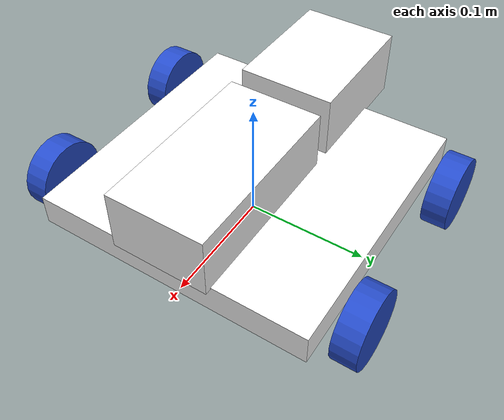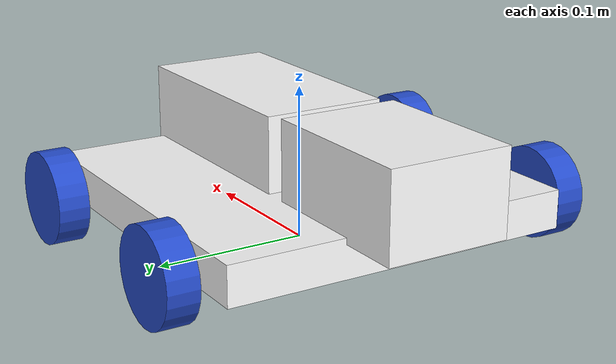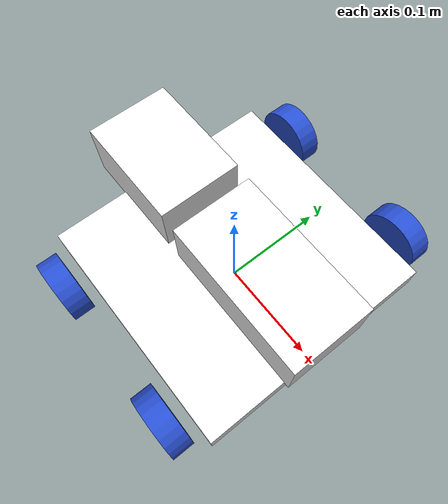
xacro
<?xml version="1.0"?>
<robot xmlns:xacro="http://www.ros.org/wiki/xacro">

    <xacro:include filename="inertial_macros.xacro" />
    <material name="white">
        <color rgba="1 1 1 1" />
    </material>

    <material name="orange">
        <color rgba="1 0.3 0.1 1" />
    </material>

    <material name="blue">
        <color rgba="0.2 0.2 1 1" />
    </material>

    <material name="black">
        <color rgba="0 0 0 1" />
    </material>
    <material name="red">
        <color rgba="1 0 0 1" />
    </material>
    <!-- Base Link -->
    <link name= "base_link">
    </link>

    <!-- Chassis Link -->
    <joint name="chassis_joint" type="fixed">
        <parent link="base_link" />
        <child link="chassis"/>
        <origin xyz="0 0 0.0325"/>
    </joint>

    <link name="chassis">
        <visual>
        <origin xyz="0 0 0" />
            <geometry>
                <box size="0.23 0.23 0.025"/>
            </geometry>
            <material name="white"/>
        </visual>
        <collision>
        <origin xyz="0 0 0" />
            <geometry>
                <box size="0.23 0.23 0.025"/>
            </geometry>
            <material name="white"/>
        </collision>
        <xacro:inertial_box mass="0.98" x="0.215" y="0.205" z="0.06">
            <origin xyz="0 0 0" rpy="0 0 0"/>
        </xacro:inertial_box>
    </link>

    <!-- Lidar platform-->
    <joint name="lidar-platform-joint" type="fixed">
        <parent link="chassis" />
        <child link="lidar-platform"/>
        <origin xyz="0.045 0 0.036"/>
    </joint>

    <link name="lidar-platform">
        <visual>
        <origin xyz="0 0 0" />
            <geometry>
                <box size="0.15 0.08 0.05"/>
            </geometry>
            <material name="white"/>
        </visual>
        <collision>
        <origin xyz="0 0 0" />
            <geometry>
                <box size="0.15 0.08 0.05"/>
            </geometry>
            <material name="white"/>
        </collision>
        <xacro:inertial_box mass="0.3" x="0.15" y="0.08" z="0.05">
            <origin xyz="0 0 0" rpy="0 0 0"/>
        </xacro:inertial_box>
    </link>

    <joint name="brain-joint" type="fixed">
        <parent link="chassis" />
        <child link="brain"/>
        <origin xyz="-0.1 0 0.036"/>
    </joint>

    <link name="brain">
        <visual>
        <origin xyz="0 0 0" />
            <geometry>
                <box size="0.11 0.08 0.055"/>
            </geometry>
            <material name="white"/>
        </visual>
        <collision>
        <origin xyz="0 0 0" />
            <geometry>
                <box size="0.11 0.08 0.055"/>
            </geometry>
            <material name="white"/>
        </collision>
        <xacro:inertial_box mass="0.3" x="0.11" y="0.08" z="0.055">
            <origin xyz="0 0 0" rpy="0 0 0"/>
        </xacro:inertial_box>
    </link>

    <!-- left back wheel link-->
    <joint name="left-back-wheel-chassis_joint" type="continuous">
        <parent link="base_link" />
        <child link="left-back-wheel-chassis"/>
        <origin xyz ="-0.075 0.135 0.03" rpy="-${pi/2} 0 0"/>
        <axis xyz="0 0 1" />
    </joint>
    <link name="left-back-wheel-chassis">
        <visual>
        <origin xyz="0 0 0" />
            <geometry>
                <cylinder radius="0.03" length="0.02"/>
            </geometry>
        </visual>
        <collision>
        <origin xyz="0 0 0" />
            <geometry>
                <cylinder radius="0.03" length="0.02"/>
            </geometry>
        </collision>
        <xacro:inertial_cylinder mass="0.028" length="0.02" radius="0.03">
            <origin xyz="0 0 0" rpy="0 0 0"/>
        </xacro:inertial_cylinder>
    </link>

    <gazebo reference="left-back-wheel-chassis">
        <material>Gazebo/Blue</material>
    </gazebo>

    <!-- right back wheel link-->
    <joint name="right-back-wheel-chassis_joint" type="continuous">
        <parent link="base_link" />
        <child link="right-back-wheel-chassis"/>
        <origin xyz ="-0.075 -0.135 0.03" rpy="-${pi/2} 0 0"/>
        <axis xyz="0 0 1" />
    </joint>
    <link name="right-back-wheel-chassis">
        <visual>
        <origin xyz="0 0 0" />
            <geometry>
                <cylinder radius="0.03" length="0.02"/>
            </geometry>
        </visual>
        <collision>
        <origin xyz="0 0 0" />
            <geometry>
                <cylinder radius="0.03" length="0.02"/>
            </geometry>
        </collision>
        <xacro:inertial_cylinder mass="0.028" length="0.02" radius="0.03">
            <origin xyz="0 0 0" rpy="0 0 0"/>
        </xacro:inertial_cylinder>
    </link>
    <gazebo reference="right-back-wheel-chassis">
        <material>Gazebo/Blue</material>
    </gazebo>

    <!-- left front wheel link-->
    <joint name="left-front-wheel-chassis_joint" type="continuous">
        <parent link="base_link" />
        <child link="left-front-wheel-chassis"/>
        <origin xyz ="0.075 0.135 0.03" rpy="-${pi/2} 0 0"/>
        <axis xyz="0 0 1" />
    </joint>
    <link name="left-front-wheel-chassis">
        <visual>
        <origin xyz="0 0 0" />
            <geometry>
                <cylinder radius="0.03" length="0.02"/>
            </geometry>
        </visual>
        <collision>
        <origin xyz="0 0 0" />
            <geometry>
                <cylinder radius="0.03" length="0.02"/>
            </geometry>
        </collision>
        <xacro:inertial_cylinder mass="0.028" length="0.02" radius="0.03">
            <origin xyz="0 0 0" rpy="0 0 0"/>
        </xacro:inertial_cylinder>
    </link>
    <gazebo reference="left-front-wheel-chassis">
        <material>Gazebo/Blue</material>
    </gazebo>

    <!-- right front wheel link-->
    <joint name="right-front-wheel-chassis_joint" type="continuous">
        <parent link="base_link" />
        <child link="right-front-wheel-chassis"/>
        <origin xyz ="0.075 -0.135 0.03" rpy="-${pi/2} 0 0"/>
        <axis xyz="0 0 1" />
    </joint>
    <link name="right-front-wheel-chassis">
        <visual>
        <origin xyz="0 0 0" />
            <geometry>
                <cylinder radius="0.03" length="0.02"/>
            </geometry>
        </visual>
        <collision>
        <origin xyz="0 0 0" />
            <geometry>
                <cylinder radius="0.03" length="0.02"/>
            </geometry>
        </collision>
        <xacro:inertial_cylinder mass="0.028" length="0.02" radius="0.03">
            <origin xyz="0 0 0" rpy="0 0 0"/>
        </xacro:inertial_cylinder>
    </link>

    <gazebo reference="right-front-wheel-chassis">
        <material>Gazebo/Blue</material>
    </gazebo>

</robot>
